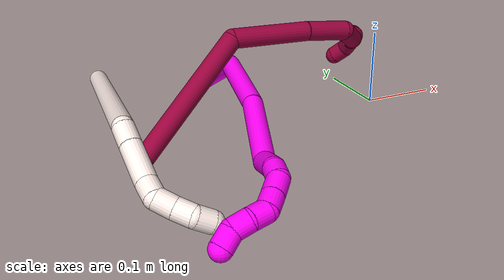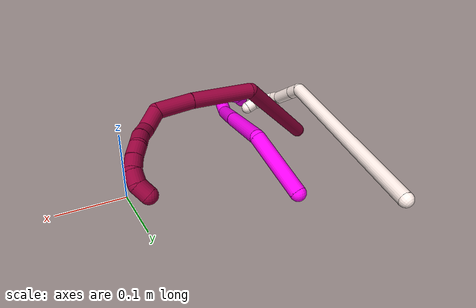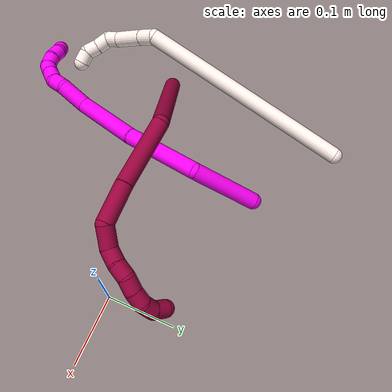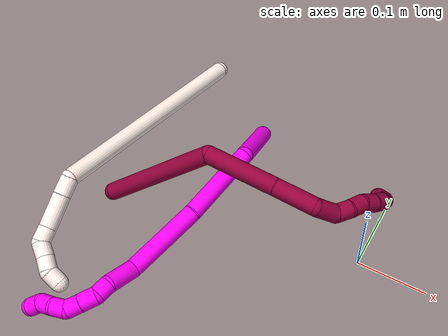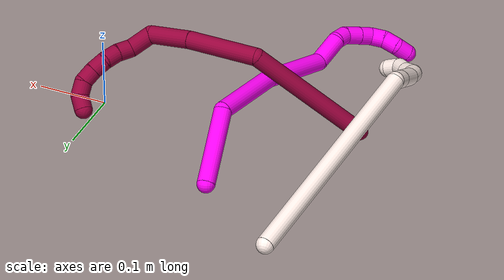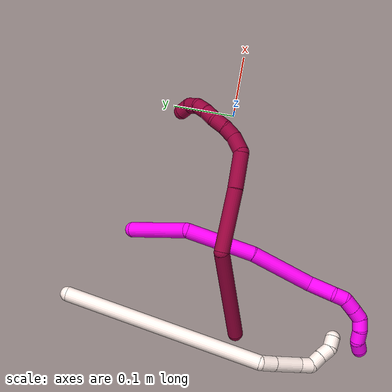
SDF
<sdf version="1.7">
 <world name="default">
  <model name="8">
   <static>0</static>
   <link name="8">
    <collision name="collision-cylinder-e_1_1_4">
     <pose>0.052071 -0.053715 -0.05172 2.33728 0.609595 1.27368</pose>
     <geometry><cylinder><radius>0.0125</radius><length>0.181898</length></cylinder></geometry>
     <surface>
      <friction><ode><mu>1.16</mu><mu2>1.16</mu2><slip1>0</slip1><slip2>0</slip2></ode></friction>
      <contact><ode><kp>1e+06</kp><kd>1</kd><max_vel>0</max_vel><min_depth>0.001</min_depth></ode></contact>
     </surface>
    </collision>
    <visual name="visual-cylinder-e_1_1_4">
     <pose>0.052071 -0.053715 -0.05172 2.33728 0.609595 1.27368</pose>
     <geometry><cylinder><radius>0.0125</radius><length>0.181898</length></cylinder></geometry>
     <material><ambient>0.584314 0 0.227451 1</ambient></material>
    </visual>
    <collision name="collision-cylinder-e_2_4_5">
     <pose>0.12227 -0.105569 -0.150842 -3.10235 0.364991 -2.92973</pose>
     <geometry><cylinder><radius>0.0125</radius><length>0.101566</length></cylinder></geometry>
     <surface>
      <friction><ode><mu>1.16</mu><mu2>1.16</mu2><slip1>0</slip1><slip2>0</slip2></ode></friction>
      <contact><ode><kp>1e+06</kp><kd>1</kd><max_vel>0</max_vel><min_depth>0.001</min_depth></ode></contact>
     </surface>
    </collision>
    <visual name="visual-cylinder-e_2_4_5">
     <pose>0.12227 -0.105569 -0.150842 -3.10235 0.364991 -2.92973</pose>
     <geometry><cylinder><radius>0.0125</radius><length>0.101566</length></cylinder></geometry>
     <material><ambient>0.584314 0 0.227451 1</ambient></material>
    </visual>
    <collision name="collision-cylinder-e_3_5_6">
     <pose>0.151737 -0.09991 -0.224604 -2.99852 0.402561 -2.4661</pose>
     <geometry><cylinder><radius>0.0125</radius><length>0.057893</length></cylinder></geometry>
     <surface>
      <friction><ode><mu>1.16</mu><mu2>1.16</mu2><slip1>0</slip1><slip2>0</slip2></ode></friction>
      <contact><ode><kp>1e+06</kp><kd>1</kd><max_vel>0</max_vel><min_depth>0.001</min_depth></ode></contact>
     </surface>
    </collision>
    <visual name="visual-cylinder-e_3_5_6">
     <pose>0.151737 -0.09991 -0.224604 -2.99852 0.402561 -2.4661</pose>
     <geometry><cylinder><radius>0.0125</radius><length>0.057893</length></cylinder></geometry>
     <material><ambient>0.584314 0 0.227451 1</ambient></material>
    </visual>
    <collision name="collision-cylinder-e_4_6_7">
     <pose>0.174026 -0.085721 -0.258512 -2.19901 0.705921 -1.25187</pose>
     <geometry><cylinder><radius>0.0125</radius><length>0.033755</length></cylinder></geometry>
     <surface>
      <friction><ode><mu>1.16</mu><mu2>1.16</mu2><slip1>0</slip1><slip2>0</slip2></ode></friction>
      <contact><ode><kp>1e+06</kp><kd>1</kd><max_vel>0</max_vel><min_depth>0.001</min_depth></ode></contact>
     </surface>
    </collision>
    <visual name="visual-cylinder-e_4_6_7">
     <pose>0.174026 -0.085721 -0.258512 -2.19901 0.705921 -1.25187</pose>
     <geometry><cylinder><radius>0.0125</radius><length>0.033755</length></cylinder></geometry>
     <material><ambient>0.584314 0 0.227451 1</ambient></material>
    </visual>
    <collision name="collision-cylinder-e_5_7_8">
     <pose>0.195509 -0.074037 -0.268803 -2.70125 1.29061 -2.56368</pose>
     <geometry><cylinder><radius>0.0125</radius><length>0.021923</length></cylinder></geometry>
     <surface>
      <friction><ode><mu>1.16</mu><mu2>1.16</mu2><slip1>0</slip1><slip2>0</slip2></ode></friction>
      <contact><ode><kp>1e+06</kp><kd>1</kd><max_vel>0</max_vel><min_depth>0.001</min_depth></ode></contact>
     </surface>
    </collision>
    <visual name="visual-cylinder-e_5_7_8">
     <pose>0.195509 -0.074037 -0.268803 -2.70125 1.29061 -2.56368</pose>
     <geometry><cylinder><radius>0.0125</radius><length>0.021923</length></cylinder></geometry>
     <material><ambient>0.584314 0 0.227451 1</ambient></material>
    </visual>
    <collision name="collision-cylinder-e_6_8_9">
     <pose>0.21622 -0.069975 -0.272367 -1.85944 1.29413 -1.58327</pose>
     <geometry><cylinder><radius>0.0125</radius><length>0.021158</length></cylinder></geometry>
     <surface>
      <friction><ode><mu>1.16</mu><mu2>1.16</mu2><slip1>0</slip1><slip2>0</slip2></ode></friction>
      <contact><ode><kp>1e+06</kp><kd>1</kd><max_vel>0</max_vel><min_depth>0.001</min_depth></ode></contact>
     </surface>
    </collision>
    <visual name="visual-cylinder-e_6_8_9">
     <pose>0.21622 -0.069975 -0.272367 -1.85944 1.29413 -1.58327</pose>
     <geometry><cylinder><radius>0.0125</radius><length>0.021158</length></cylinder></geometry>
     <material><ambient>0.584314 0 0.227451 1</ambient></material>
    </visual>
    <collision name="collision-cylinder-e_7_9_10">
     <pose>0.234755 -0.061481 -0.275326 -1.92799 0.939571 -1.26294</pose>
     <geometry><cylinder><radius>0.0125</radius><length>0.020705</length></cylinder></geometry>
     <surface>
      <friction><ode><mu>1.16</mu><mu2>1.16</mu2><slip1>0</slip1><slip2>0</slip2></ode></friction>
      <contact><ode><kp>1e+06</kp><kd>1</kd><max_vel>0</max_vel><min_depth>0.001</min_depth></ode></contact>
     </surface>
    </collision>
    <visual name="visual-cylinder-e_7_9_10">
     <pose>0.234755 -0.061481 -0.275326 -1.92799 0.939571 -1.26294</pose>
     <geometry><cylinder><radius>0.0125</radius><length>0.020705</length></cylinder></geometry>
     <material><ambient>0.584314 0 0.227451 1</ambient></material>
    </visual>
    <collision name="collision-cylinder-e_8_10_11">
     <pose>0.25137 -0.049777 -0.27781 -1.6289 0.943258 -0.99111</pose>
     <geometry><cylinder><radius>0.0125</radius><length>0.020403</length></cylinder></geometry>
     <surface>
      <friction><ode><mu>1.16</mu><mu2>1.16</mu2><slip1>0</slip1><slip2>0</slip2></ode></friction>
      <contact><ode><kp>1e+06</kp><kd>1</kd><max_vel>0</max_vel><min_depth>0.001</min_depth></ode></contact>
     </surface>
    </collision>
    <visual name="visual-cylinder-e_8_10_11">
     <pose>0.25137 -0.049777 -0.27781 -1.6289 0.943258 -0.99111</pose>
     <geometry><cylinder><radius>0.0125</radius><length>0.020403</length></cylinder></geometry>
     <material><ambient>0.584314 0 0.227451 1</ambient></material>
    </visual>
    <collision name="collision-cylinder-e_9_11_12">
     <pose>0.265243 -0.035882 -0.275353 -1.23022 0.589367 -0.422507</pose>
     <geometry><cylinder><radius>0.0125</radius><length>0.020205</length></cylinder></geometry>
     <surface>
      <friction><ode><mu>1.16</mu><mu2>1.16</mu2><slip1>0</slip1><slip2>0</slip2></ode></friction>
      <contact><ode><kp>1e+06</kp><kd>1</kd><max_vel>0</max_vel><min_depth>0.001</min_depth></ode></contact>
     </surface>
    </collision>
    <visual name="visual-cylinder-e_9_11_12">
     <pose>0.265243 -0.035882 -0.275353 -1.23022 0.589367 -0.422507</pose>
     <geometry><cylinder><radius>0.0125</radius><length>0.020205</length></cylinder></geometry>
     <material><ambient>0.584314 0 0.227451 1</ambient></material>
    </visual>
    <collision name="collision-cylinder-e_10_12_2">
     <pose>0.273449 -0.021209 -0.265293 -0.749933 0.25559 -0.101062</pose>
     <geometry><cylinder><radius>0.0125</radius><length>0.020494</length></cylinder></geometry>
     <surface>
      <friction><ode><mu>1.16</mu><mu2>1.16</mu2><slip1>0</slip1><slip2>0</slip2></ode></friction>
      <contact><ode><kp>1e+06</kp><kd>1</kd><max_vel>0</max_vel><min_depth>0.001</min_depth></ode></contact>
     </surface>
    </collision>
    <visual name="visual-cylinder-e_10_12_2">
     <pose>0.273449 -0.021209 -0.265293 -0.749933 0.25559 -0.101062</pose>
     <geometry><cylinder><radius>0.0125</radius><length>0.020494</length></cylinder></geometry>
     <material><ambient>0.584314 0 0.227451 1</ambient></material>
    </visual>
    <collision name="collision-sphere-2">
     <pose>0.27604 -0.014452 -0.258038 0 -0 0</pose>
     <geometry><sphere><radius>0.0125</radius></sphere></geometry>
     <surface>
      <friction><ode><mu>1.16</mu><mu2>1.16</mu2><slip1>0</slip1><slip2>0</slip2></ode></friction>
      <contact><ode><kp>1e+06</kp><kd>1</kd><max_vel>0</max_vel><min_depth>0.001</min_depth></ode></contact>
     </surface>
    </collision>
    <visual name="visual-sphere-2">
     <pose>0.27604 -0.014452 -0.258038 0 -0 0</pose>
     <geometry><sphere><radius>0.0125</radius></sphere></geometry>
     <material><ambient>0.584314 0 0.227451 1</ambient></material>
    </visual>
    <collision name="collision-sphere-12">
     <pose>0.270858 -0.027966 -0.272547 0 -0 0</pose>
     <geometry><sphere><radius>0.0125</radius></sphere></geometry>
     <surface>
      <friction><ode><mu>1.16</mu><mu2>1.16</mu2><slip1>0</slip1><slip2>0</slip2></ode></friction>
      <contact><ode><kp>1e+06</kp><kd>1</kd><max_vel>0</max_vel><min_depth>0.001</min_depth></ode></contact>
     </surface>
    </collision>
    <visual name="visual-sphere-12">
     <pose>0.270858 -0.027966 -0.272547 0 -0 0</pose>
     <geometry><sphere><radius>0.0125</radius></sphere></geometry>
     <material><ambient>0.584314 0 0.227451 1</ambient></material>
    </visual>
    <collision name="collision-sphere-11">
     <pose>0.259628 -0.043798 -0.278158 0 -0 0</pose>
     <geometry><sphere><radius>0.0125</radius></sphere></geometry>
     <surface>
      <friction><ode><mu>1.16</mu><mu2>1.16</mu2><slip1>0</slip1><slip2>0</slip2></ode></friction>
      <contact><ode><kp>1e+06</kp><kd>1</kd><max_vel>0</max_vel><min_depth>0.001</min_depth></ode></contact>
     </surface>
    </collision>
    <visual name="visual-sphere-11">
     <pose>0.259628 -0.043798 -0.278158 0 -0 0</pose>
     <geometry><sphere><radius>0.0125</radius></sphere></geometry>
     <material><ambient>0.584314 0 0.227451 1</ambient></material>
    </visual>
    <collision name="collision-sphere-10">
     <pose>0.243112 -0.055757 -0.277462 0 -0 0</pose>
     <geometry><sphere><radius>0.0125</radius></sphere></geometry>
     <surface>
      <friction><ode><mu>1.16</mu><mu2>1.16</mu2><slip1>0</slip1><slip2>0</slip2></ode></friction>
      <contact><ode><kp>1e+06</kp><kd>1</kd><max_vel>0</max_vel><min_depth>0.001</min_depth></ode></contact>
     </surface>
    </collision>
    <visual name="visual-sphere-10">
     <pose>0.243112 -0.055757 -0.277462 0 -0 0</pose>
     <geometry><sphere><radius>0.0125</radius></sphere></geometry>
     <material><ambient>0.584314 0 0.227451 1</ambient></material>
    </visual>
    <collision name="collision-sphere-9">
     <pose>0.226397 -0.067205 -0.27319 0 -0 0</pose>
     <geometry><sphere><radius>0.0125</radius></sphere></geometry>
     <surface>
      <friction><ode><mu>1.16</mu><mu2>1.16</mu2><slip1>0</slip1><slip2>0</slip2></ode></friction>
      <contact><ode><kp>1e+06</kp><kd>1</kd><max_vel>0</max_vel><min_depth>0.001</min_depth></ode></contact>
     </surface>
    </collision>
    <visual name="visual-sphere-9">
     <pose>0.226397 -0.067205 -0.27319 0 -0 0</pose>
     <geometry><sphere><radius>0.0125</radius></sphere></geometry>
     <material><ambient>0.584314 0 0.227451 1</ambient></material>
    </visual>
    <collision name="collision-sphere-4">
     <pose>0.104143 -0.10743 -0.10344 0 -0 0</pose>
     <geometry><sphere><radius>0.0125</radius></sphere></geometry>
     <surface>
      <friction><ode><mu>1.16</mu><mu2>1.16</mu2><slip1>0</slip1><slip2>0</slip2></ode></friction>
      <contact><ode><kp>1e+06</kp><kd>1</kd><max_vel>0</max_vel><min_depth>0.001</min_depth></ode></contact>
     </surface>
    </collision>
    <visual name="visual-sphere-4">
     <pose>0.104143 -0.10743 -0.10344 0 -0 0</pose>
     <geometry><sphere><radius>0.0125</radius></sphere></geometry>
     <material><ambient>0.584314 0 0.227451 1</ambient></material>
    </visual>
    <collision name="collision-sphere-1">
     <geometry><sphere><radius>0.0125</radius></sphere></geometry>
     <surface>
      <friction><ode><mu>1.16</mu><mu2>1.16</mu2><slip1>0</slip1><slip2>0</slip2></ode></friction>
      <contact><ode><kp>1e+06</kp><kd>1</kd><max_vel>0</max_vel><min_depth>0.001</min_depth></ode></contact>
     </surface>
    </collision>
    <visual name="visual-sphere-1">
     <geometry><sphere><radius>0.0125</radius></sphere></geometry>
     <material><ambient>0.584314 0 0.227451 1</ambient></material>
    </visual>
    <collision name="collision-sphere-8">
     <pose>0.206043 -0.072745 -0.271545 0 -0 0</pose>
     <geometry><sphere><radius>0.0125</radius></sphere></geometry>
     <surface>
      <friction><ode><mu>1.16</mu><mu2>1.16</mu2><slip1>0</slip1><slip2>0</slip2></ode></friction>
      <contact><ode><kp>1e+06</kp><kd>1</kd><max_vel>0</max_vel><min_depth>0.001</min_depth></ode></contact>
     </surface>
    </collision>
    <visual name="visual-sphere-8">
     <pose>0.206043 -0.072745 -0.271545 0 -0 0</pose>
     <geometry><sphere><radius>0.0125</radius></sphere></geometry>
     <material><ambient>0.584314 0 0.227451 1</ambient></material>
    </visual>
    <collision name="collision-sphere-5">
     <pose>0.140396 -0.103708 -0.198243 0 -0 0</pose>
     <geometry><sphere><radius>0.0125</radius></sphere></geometry>
     <surface>
      <friction><ode><mu>1.16</mu><mu2>1.16</mu2><slip1>0</slip1><slip2>0</slip2></ode></friction>
      <contact><ode><kp>1e+06</kp><kd>1</kd><max_vel>0</max_vel><min_depth>0.001</min_depth></ode></contact>
     </surface>
    </collision>
    <visual name="visual-sphere-5">
     <pose>0.140396 -0.103708 -0.198243 0 -0 0</pose>
     <geometry><sphere><radius>0.0125</radius></sphere></geometry>
     <material><ambient>0.584314 0 0.227451 1</ambient></material>
    </visual>
    <collision name="collision-sphere-6">
     <pose>0.163077 -0.096113 -0.250964 0 -0 0</pose>
     <geometry><sphere><radius>0.0125</radius></sphere></geometry>
     <surface>
      <friction><ode><mu>1.16</mu><mu2>1.16</mu2><slip1>0</slip1><slip2>0</slip2></ode></friction>
      <contact><ode><kp>1e+06</kp><kd>1</kd><max_vel>0</max_vel><min_depth>0.001</min_depth></ode></contact>
     </surface>
    </collision>
    <visual name="visual-sphere-6">
     <pose>0.163077 -0.096113 -0.250964 0 -0 0</pose>
     <geometry><sphere><radius>0.0125</radius></sphere></geometry>
     <material><ambient>0.584314 0 0.227451 1</ambient></material>
    </visual>
    <collision name="collision-sphere-7">
     <pose>0.184975 -0.075329 -0.266061 0 -0 0</pose>
     <geometry><sphere><radius>0.0125</radius></sphere></geometry>
     <surface>
      <friction><ode><mu>1.16</mu><mu2>1.16</mu2><slip1>0</slip1><slip2>0</slip2></ode></friction>
      <contact><ode><kp>1e+06</kp><kd>1</kd><max_vel>0</max_vel><min_depth>0.001</min_depth></ode></contact>
     </surface>
    </collision>
    <visual name="visual-sphere-7">
     <pose>0.184975 -0.075329 -0.266061 0 -0 0</pose>
     <geometry><sphere><radius>0.0125</radius></sphere></geometry>
     <material><ambient>0.584314 0 0.227451 1</ambient></material>
    </visual>
    <inertial>
     <pose>0.132725 -0.071445 -0.160964 0 -0 0</pose>
     <mass>0.5</mass>
     <inertia>
      <ixx>0.000415</ixx>
      <ixy>0</ixy>
      <ixz>0</ixz>
      <iyy>0.000573</iyy>
      <iyz>0</iyz>
      <izz>-7.4e-05</izz>
     </inertia>
    </inertial>
   </link>
   <pose>-0.355804 -0.065977 0.011492 -1.56517 -0.072737 1.16616</pose>
  </model>
  <model name="10">
   <static>0</static>
   <link name="10">
    <collision name="collision-cylinder-e_1_1_4">
     <pose>0.032961 -0.042865 0.001409 1.53794 0.655255 0.635488</pose>
     <geometry><cylinder><radius>0.0125</radius><length>0.108181</length></cylinder></geometry>
     <surface>
      <friction><ode><mu>1.16</mu><mu2>1.16</mu2><slip1>0</slip1><slip2>0</slip2></ode></friction>
      <contact><ode><kp>1e+06</kp><kd>1</kd><max_vel>0</max_vel><min_depth>0.001</min_depth></ode></contact>
     </surface>
    </collision>
    <visual name="visual-cylinder-e_1_1_4">
     <pose>0.032961 -0.042865 0.001409 1.53794 0.655255 0.635488</pose>
     <geometry><cylinder><radius>0.0125</radius><length>0.108181</length></cylinder></geometry>
     <material><ambient>1 0 0.964706 1</ambient></material>
    </visual>
    <collision name="collision-cylinder-e_2_4_5">
     <pose>0.064775 -0.139032 0.023569 1.19955 -0.020043 -0.013706</pose>
     <geometry><cylinder><radius>0.0125</radius><length>0.114421</length></cylinder></geometry>
     <surface>
      <friction><ode><mu>1.16</mu><mu2>1.16</mu2><slip1>0</slip1><slip2>0</slip2></ode></friction>
      <contact><ode><kp>1e+06</kp><kd>1</kd><max_vel>0</max_vel><min_depth>0.001</min_depth></ode></contact>
     </surface>
    </collision>
    <visual name="visual-cylinder-e_2_4_5">
     <pose>0.064775 -0.139032 0.023569 1.19955 -0.020043 -0.013706</pose>
     <geometry><cylinder><radius>0.0125</radius><length>0.114421</length></cylinder></geometry>
     <material><ambient>1 0 0.964706 1</ambient></material>
    </visual>
    <collision name="collision-cylinder-e_3_5_6">
     <pose>0.055499 -0.239322 0.070753 1.05836 -0.149661 -0.087631</pose>
     <geometry><cylinder><radius>0.0125</radius><length>0.109044</length></cylinder></geometry>
     <surface>
      <friction><ode><mu>1.16</mu><mu2>1.16</mu2><slip1>0</slip1><slip2>0</slip2></ode></friction>
      <contact><ode><kp>1e+06</kp><kd>1</kd><max_vel>0</max_vel><min_depth>0.001</min_depth></ode></contact>
     </surface>
    </collision>
    <visual name="visual-cylinder-e_3_5_6">
     <pose>0.055499 -0.239322 0.070753 1.05836 -0.149661 -0.087631</pose>
     <geometry><cylinder><radius>0.0125</radius><length>0.109044</length></cylinder></geometry>
     <material><ambient>1 0 0.964706 1</ambient></material>
    </visual>
    <collision name="collision-cylinder-e_4_6_7">
     <pose>0.056136 -0.304746 0.106039 1.12314 0.40496 0.256893</pose>
     <geometry><cylinder><radius>0.0125</radius><length>0.044501</length></cylinder></geometry>
     <surface>
      <friction><ode><mu>1.16</mu><mu2>1.16</mu2><slip1>0</slip1><slip2>0</slip2></ode></friction>
      <contact><ode><kp>1e+06</kp><kd>1</kd><max_vel>0</max_vel><min_depth>0.001</min_depth></ode></contact>
     </surface>
    </collision>
    <visual name="visual-cylinder-e_4_6_7">
     <pose>0.056136 -0.304746 0.106039 1.12314 0.40496 0.256893</pose>
     <geometry><cylinder><radius>0.0125</radius><length>0.044501</length></cylinder></geometry>
     <material><ambient>1 0 0.964706 1</ambient></material>
    </visual>
    <collision name="collision-cylinder-e_5_7_8">
     <pose>0.06478 -0.332279 0.119147 1.13328 -0.012182 -0.007751</pose>
     <geometry><cylinder><radius>0.0125</radius><length>0.020088</length></cylinder></geometry>
     <surface>
      <friction><ode><mu>1.16</mu><mu2>1.16</mu2><slip1>0</slip1><slip2>0</slip2></ode></friction>
      <contact><ode><kp>1e+06</kp><kd>1</kd><max_vel>0</max_vel><min_depth>0.001</min_depth></ode></contact>
     </surface>
    </collision>
    <visual name="visual-cylinder-e_5_7_8">
     <pose>0.06478 -0.332279 0.119147 1.13328 -0.012182 -0.007751</pose>
     <geometry><cylinder><radius>0.0125</radius><length>0.020088</length></cylinder></geometry>
     <material><ambient>1 0 0.964706 1</ambient></material>
    </visual>
    <collision name="collision-cylinder-e_6_8_9">
     <pose>0.061944 -0.34847 0.132371 0.66918 -0.232939 -0.081307</pose>
     <geometry><cylinder><radius>0.0125</radius><length>0.023506</length></cylinder></geometry>
     <surface>
      <friction><ode><mu>1.16</mu><mu2>1.16</mu2><slip1>0</slip1><slip2>0</slip2></ode></friction>
      <contact><ode><kp>1e+06</kp><kd>1</kd><max_vel>0</max_vel><min_depth>0.001</min_depth></ode></contact>
     </surface>
    </collision>
    <visual name="visual-cylinder-e_6_8_9">
     <pose>0.061944 -0.34847 0.132371 0.66918 -0.232939 -0.081307</pose>
     <geometry><cylinder><radius>0.0125</radius><length>0.023506</length></cylinder></geometry>
     <material><ambient>1 0 0.964706 1</ambient></material>
    </visual>
    <collision name="collision-cylinder-e_7_9_10">
     <pose>0.056789 -0.361405 0.149193 0.639555 -0.244588 -0.081355</pose>
     <geometry><cylinder><radius>0.0125</radius><length>0.020174</length></cylinder></geometry>
     <surface>
      <friction><ode><mu>1.16</mu><mu2>1.16</mu2><slip1>0</slip1><slip2>0</slip2></ode></friction>
      <contact><ode><kp>1e+06</kp><kd>1</kd><max_vel>0</max_vel><min_depth>0.001</min_depth></ode></contact>
     </surface>
    </collision>
    <visual name="visual-cylinder-e_7_9_10">
     <pose>0.056789 -0.361405 0.149193 0.639555 -0.244588 -0.081355</pose>
     <geometry><cylinder><radius>0.0125</radius><length>0.020174</length></cylinder></geometry>
     <material><ambient>1 0 0.964706 1</ambient></material>
    </visual>
    <collision name="collision-cylinder-e_8_10_11">
     <pose>0.053191 -0.36733 0.166992 0.008414 -0.115637 -0.000487</pose>
     <geometry><cylinder><radius>0.0125</radius><length>0.020028</length></cylinder></geometry>
     <surface>
      <friction><ode><mu>1.16</mu><mu2>1.16</mu2><slip1>0</slip1><slip2>0</slip2></ode></friction>
      <contact><ode><kp>1e+06</kp><kd>1</kd><max_vel>0</max_vel><min_depth>0.001</min_depth></ode></contact>
     </surface>
    </collision>
    <visual name="visual-cylinder-e_8_10_11">
     <pose>0.053191 -0.36733 0.166992 0.008414 -0.115637 -0.000487</pose>
     <geometry><cylinder><radius>0.0125</radius><length>0.020028</length></cylinder></geometry>
     <material><ambient>1 0 0.964706 1</ambient></material>
    </visual>
    <collision name="collision-cylinder-e_9_11_12">
     <pose>0.048437 -0.365827 0.186153 -0.170537 -0.367393 0.031759</pose>
     <geometry><cylinder><radius>0.0125</radius><length>0.020038</length></cylinder></geometry>
     <surface>
      <friction><ode><mu>1.16</mu><mu2>1.16</mu2><slip1>0</slip1><slip2>0</slip2></ode></friction>
      <contact><ode><kp>1e+06</kp><kd>1</kd><max_vel>0</max_vel><min_depth>0.001</min_depth></ode></contact>
     </surface>
    </collision>
    <visual name="visual-cylinder-e_9_11_12">
     <pose>0.048437 -0.365827 0.186153 -0.170537 -0.367393 0.031759</pose>
     <geometry><cylinder><radius>0.0125</radius><length>0.020038</length></cylinder></geometry>
     <material><ambient>1 0 0.964706 1</ambient></material>
    </visual>
    <collision name="collision-cylinder-e_10_12_2">
     <pose>0.038906 -0.366789 0.203017 0.321727 -0.634341 -0.106428</pose>
     <geometry><cylinder><radius>0.0125</radius><length>0.020018</length></cylinder></geometry>
     <surface>
      <friction><ode><mu>1.16</mu><mu2>1.16</mu2><slip1>0</slip1><slip2>0</slip2></ode></friction>
      <contact><ode><kp>1e+06</kp><kd>1</kd><max_vel>0</max_vel><min_depth>0.001</min_depth></ode></contact>
     </surface>
    </collision>
    <visual name="visual-cylinder-e_10_12_2">
     <pose>0.038906 -0.366789 0.203017 0.321727 -0.634341 -0.106428</pose>
     <geometry><cylinder><radius>0.0125</radius><length>0.020018</length></cylinder></geometry>
     <material><ambient>1 0 0.964706 1</ambient></material>
    </visual>
    <collision name="collision-sphere-2">
     <pose>0.032974 -0.369338 0.210665 0 -0 0</pose>
     <geometry><sphere><radius>0.0125</radius></sphere></geometry>
     <surface>
      <friction><ode><mu>1.16</mu><mu2>1.16</mu2><slip1>0</slip1><slip2>0</slip2></ode></friction>
      <contact><ode><kp>1e+06</kp><kd>1</kd><max_vel>0</max_vel><min_depth>0.001</min_depth></ode></contact>
     </surface>
    </collision>
    <visual name="visual-sphere-2">
     <pose>0.032974 -0.369338 0.210665 0 -0 0</pose>
     <geometry><sphere><radius>0.0125</radius></sphere></geometry>
     <material><ambient>1 0 0.964706 1</ambient></material>
    </visual>
    <collision name="collision-sphere-12">
     <pose>0.044838 -0.36424 0.195368 0 -0 0</pose>
     <geometry><sphere><radius>0.0125</radius></sphere></geometry>
     <surface>
      <friction><ode><mu>1.16</mu><mu2>1.16</mu2><slip1>0</slip1><slip2>0</slip2></ode></friction>
      <contact><ode><kp>1e+06</kp><kd>1</kd><max_vel>0</max_vel><min_depth>0.001</min_depth></ode></contact>
     </surface>
    </collision>
    <visual name="visual-sphere-12">
     <pose>0.044838 -0.36424 0.195368 0 -0 0</pose>
     <geometry><sphere><radius>0.0125</radius></sphere></geometry>
     <material><ambient>1 0 0.964706 1</ambient></material>
    </visual>
    <collision name="collision-sphere-11">
     <pose>0.052035 -0.367414 0.176939 0 -0 0</pose>
     <geometry><sphere><radius>0.0125</radius></sphere></geometry>
     <surface>
      <friction><ode><mu>1.16</mu><mu2>1.16</mu2><slip1>0</slip1><slip2>0</slip2></ode></friction>
      <contact><ode><kp>1e+06</kp><kd>1</kd><max_vel>0</max_vel><min_depth>0.001</min_depth></ode></contact>
     </surface>
    </collision>
    <visual name="visual-sphere-11">
     <pose>0.052035 -0.367414 0.176939 0 -0 0</pose>
     <geometry><sphere><radius>0.0125</radius></sphere></geometry>
     <material><ambient>1 0 0.964706 1</ambient></material>
    </visual>
    <collision name="collision-sphere-10">
     <pose>0.054346 -0.367246 0.157045 0 -0 0</pose>
     <geometry><sphere><radius>0.0125</radius></sphere></geometry>
     <surface>
      <friction><ode><mu>1.16</mu><mu2>1.16</mu2><slip1>0</slip1><slip2>0</slip2></ode></friction>
      <contact><ode><kp>1e+06</kp><kd>1</kd><max_vel>0</max_vel><min_depth>0.001</min_depth></ode></contact>
     </surface>
    </collision>
    <visual name="visual-sphere-10">
     <pose>0.054346 -0.367246 0.157045 0 -0 0</pose>
     <geometry><sphere><radius>0.0125</radius></sphere></geometry>
     <material><ambient>1 0 0.964706 1</ambient></material>
    </visual>
    <collision name="collision-sphere-9">
     <pose>0.059231 -0.355564 0.14134 0 -0 0</pose>
     <geometry><sphere><radius>0.0125</radius></sphere></geometry>
     <surface>
      <friction><ode><mu>1.16</mu><mu2>1.16</mu2><slip1>0</slip1><slip2>0</slip2></ode></friction>
      <contact><ode><kp>1e+06</kp><kd>1</kd><max_vel>0</max_vel><min_depth>0.001</min_depth></ode></contact>
     </surface>
    </collision>
    <visual name="visual-sphere-9">
     <pose>0.059231 -0.355564 0.14134 0 -0 0</pose>
     <geometry><sphere><radius>0.0125</radius></sphere></geometry>
     <material><ambient>1 0 0.964706 1</ambient></material>
    </visual>
    <collision name="collision-sphere-4">
     <pose>0.065922 -0.08573 0.002818 0 -0 0</pose>
     <geometry><sphere><radius>0.0125</radius></sphere></geometry>
     <surface>
      <friction><ode><mu>1.16</mu><mu2>1.16</mu2><slip1>0</slip1><slip2>0</slip2></ode></friction>
      <contact><ode><kp>1e+06</kp><kd>1</kd><max_vel>0</max_vel><min_depth>0.001</min_depth></ode></contact>
     </surface>
    </collision>
    <visual name="visual-sphere-4">
     <pose>0.065922 -0.08573 0.002818 0 -0 0</pose>
     <geometry><sphere><radius>0.0125</radius></sphere></geometry>
     <material><ambient>1 0 0.964706 1</ambient></material>
    </visual>
    <collision name="collision-sphere-1">
     <geometry><sphere><radius>0.0125</radius></sphere></geometry>
     <surface>
      <friction><ode><mu>1.16</mu><mu2>1.16</mu2><slip1>0</slip1><slip2>0</slip2></ode></friction>
      <contact><ode><kp>1e+06</kp><kd>1</kd><max_vel>0</max_vel><min_depth>0.001</min_depth></ode></contact>
     </surface>
    </collision>
    <visual name="visual-sphere-1">
     <geometry><sphere><radius>0.0125</radius></sphere></geometry>
     <material><ambient>1 0 0.964706 1</ambient></material>
    </visual>
    <collision name="collision-sphere-8">
     <pose>0.064657 -0.341376 0.123402 0 -0 0</pose>
     <geometry><sphere><radius>0.0125</radius></sphere></geometry>
     <surface>
      <friction><ode><mu>1.16</mu><mu2>1.16</mu2><slip1>0</slip1><slip2>0</slip2></ode></friction>
      <contact><ode><kp>1e+06</kp><kd>1</kd><max_vel>0</max_vel><min_depth>0.001</min_depth></ode></contact>
     </surface>
    </collision>
    <visual name="visual-sphere-8">
     <pose>0.064657 -0.341376 0.123402 0 -0 0</pose>
     <geometry><sphere><radius>0.0125</radius></sphere></geometry>
     <material><ambient>1 0 0.964706 1</ambient></material>
    </visual>
    <collision name="collision-sphere-5">
     <pose>0.063628 -0.192335 0.04432 0 -0 0</pose>
     <geometry><sphere><radius>0.0125</radius></sphere></geometry>
     <surface>
      <friction><ode><mu>1.16</mu><mu2>1.16</mu2><slip1>0</slip1><slip2>0</slip2></ode></friction>
      <contact><ode><kp>1e+06</kp><kd>1</kd><max_vel>0</max_vel><min_depth>0.001</min_depth></ode></contact>
     </surface>
    </collision>
    <visual name="visual-sphere-5">
     <pose>0.063628 -0.192335 0.04432 0 -0 0</pose>
     <geometry><sphere><radius>0.0125</radius></sphere></geometry>
     <material><ambient>1 0 0.964706 1</ambient></material>
    </visual>
    <collision name="collision-sphere-6">
     <pose>0.04737 -0.28631 0.097187 0 -0 0</pose>
     <geometry><sphere><radius>0.0125</radius></sphere></geometry>
     <surface>
      <friction><ode><mu>1.16</mu><mu2>1.16</mu2><slip1>0</slip1><slip2>0</slip2></ode></friction>
      <contact><ode><kp>1e+06</kp><kd>1</kd><max_vel>0</max_vel><min_depth>0.001</min_depth></ode></contact>
     </surface>
    </collision>
    <visual name="visual-sphere-6">
     <pose>0.04737 -0.28631 0.097187 0 -0 0</pose>
     <geometry><sphere><radius>0.0125</radius></sphere></geometry>
     <material><ambient>1 0 0.964706 1</ambient></material>
    </visual>
    <collision name="collision-sphere-7">
     <pose>0.064902 -0.323181 0.114891 0 -0 0</pose>
     <geometry><sphere><radius>0.0125</radius></sphere></geometry>
     <surface>
      <friction><ode><mu>1.16</mu><mu2>1.16</mu2><slip1>0</slip1><slip2>0</slip2></ode></friction>
      <contact><ode><kp>1e+06</kp><kd>1</kd><max_vel>0</max_vel><min_depth>0.001</min_depth></ode></contact>
     </surface>
    </collision>
    <visual name="visual-sphere-7">
     <pose>0.064902 -0.323181 0.114891 0 -0 0</pose>
     <geometry><sphere><radius>0.0125</radius></sphere></geometry>
     <material><ambient>1 0 0.964706 1</ambient></material>
    </visual>
    <inertial>
     <pose>0.05249 -0.208781 0.069873 0 -0 0</pose>
     <mass>0.5</mass>
     <inertia>
      <ixx>0.000371</ixx>
      <ixy>0</ixy>
      <ixz>0</ixz>
      <iyy>0.000171</iyy>
      <iyz>0</iyz>
      <izz>0.000283</izz>
     </inertia>
    </inertial>
   </link>
   <pose>-0.215467 0.132113 0.012483 1.588 -1.47997 -1.38306</pose>
  </model>
  <model name="11">
   <static>0</static>
   <link name="11">
    <collision name="collision-cylinder-e_1_1_4">
     <pose>-0.032735 -0.050927 0.159423 0.309202 -0.193156 -0.030194</pose>
     <geometry><cylinder><radius>0.0125</radius><length>0.341062</length></cylinder></geometry>
     <surface>
      <friction><ode><mu>1.16</mu><mu2>1.16</mu2><slip1>0</slip1><slip2>0</slip2></ode></friction>
      <contact><ode><kp>1e+06</kp><kd>1</kd><max_vel>0</max_vel><min_depth>0.001</min_depth></ode></contact>
     </surface>
    </collision>
    <visual name="visual-cylinder-e_1_1_4">
     <pose>-0.032735 -0.050927 0.159423 0.309202 -0.193156 -0.030194</pose>
     <geometry><cylinder><radius>0.0125</radius><length>0.341062</length></cylinder></geometry>
     <material><ambient>1 0.933333 0.909804 1</ambient></material>
    </visual>
    <collision name="collision-cylinder-e_2_4_5">
     <pose>-0.063856 -0.112145 0.326625 0.923458 0.124406 0.061965</pose>
     <geometry><cylinder><radius>0.0125</radius><length>0.026</length></cylinder></geometry>
     <surface>
      <friction><ode><mu>1.16</mu><mu2>1.16</mu2><slip1>0</slip1><slip2>0</slip2></ode></friction>
      <contact><ode><kp>1e+06</kp><kd>1</kd><max_vel>0</max_vel><min_depth>0.001</min_depth></ode></contact>
     </surface>
    </collision>
    <visual name="visual-cylinder-e_2_4_5">
     <pose>-0.063856 -0.112145 0.326625 0.923458 0.124406 0.061965</pose>
     <geometry><cylinder><radius>0.0125</radius><length>0.026</length></cylinder></geometry>
     <material><ambient>1 0.933333 0.909804 1</ambient></material>
    </visual>
    <collision name="collision-cylinder-e_3_5_6">
     <pose>-0.058772 -0.141772 0.348496 0.941054 0.144054 0.073364</pose>
     <geometry><cylinder><radius>0.0125</radius><length>0.048355</length></cylinder></geometry>
     <surface>
      <friction><ode><mu>1.16</mu><mu2>1.16</mu2><slip1>0</slip1><slip2>0</slip2></ode></friction>
      <contact><ode><kp>1e+06</kp><kd>1</kd><max_vel>0</max_vel><min_depth>0.001</min_depth></ode></contact>
     </surface>
    </collision>
    <visual name="visual-cylinder-e_3_5_6">
     <pose>-0.058772 -0.141772 0.348496 0.941054 0.144054 0.073364</pose>
     <geometry><cylinder><radius>0.0125</radius><length>0.048355</length></cylinder></geometry>
     <material><ambient>1 0.933333 0.909804 1</ambient></material>
    </visual>
    <collision name="collision-cylinder-e_4_6_7">
     <pose>-0.053792 -0.168647 0.370107 0.786617 0.140853 0.058524</pose>
     <geometry><cylinder><radius>0.0125</radius><length>0.021508</length></cylinder></geometry>
     <surface>
      <friction><ode><mu>1.16</mu><mu2>1.16</mu2><slip1>0</slip1><slip2>0</slip2></ode></friction>
      <contact><ode><kp>1e+06</kp><kd>1</kd><max_vel>0</max_vel><min_depth>0.001</min_depth></ode></contact>
     </surface>
    </collision>
    <visual name="visual-cylinder-e_4_6_7">
     <pose>-0.053792 -0.168647 0.370107 0.786617 0.140853 0.058524</pose>
     <geometry><cylinder><radius>0.0125</radius><length>0.021508</length></cylinder></geometry>
     <material><ambient>1 0.933333 0.909804 1</ambient></material>
    </visual>
    <collision name="collision-cylinder-e_5_7_8">
     <pose>-0.043761 -0.181272 0.38242 0.815111 0.883828 0.402976</pose>
     <geometry><cylinder><radius>0.0125</radius><length>0.022042</length></cylinder></geometry>
     <surface>
      <friction><ode><mu>1.16</mu><mu2>1.16</mu2><slip1>0</slip1><slip2>0</slip2></ode></friction>
      <contact><ode><kp>1e+06</kp><kd>1</kd><max_vel>0</max_vel><min_depth>0.001</min_depth></ode></contact>
     </surface>
    </collision>
    <visual name="visual-cylinder-e_5_7_8">
     <pose>-0.043761 -0.181272 0.38242 0.815111 0.883828 0.402976</pose>
     <geometry><cylinder><radius>0.0125</radius><length>0.022042</length></cylinder></geometry>
     <material><ambient>1 0.933333 0.909804 1</ambient></material>
    </visual>
    <collision name="collision-cylinder-e_6_8_9">
     <pose>-0.027591 -0.190417 0.393043 0.608106 0.822322 0.271938</pose>
     <geometry><cylinder><radius>0.0125</radius><length>0.020877</length></cylinder></geometry>
     <surface>
      <friction><ode><mu>1.16</mu><mu2>1.16</mu2><slip1>0</slip1><slip2>0</slip2></ode></friction>
      <contact><ode><kp>1e+06</kp><kd>1</kd><max_vel>0</max_vel><min_depth>0.001</min_depth></ode></contact>
     </surface>
    </collision>
    <visual name="visual-cylinder-e_6_8_9">
     <pose>-0.027591 -0.190417 0.393043 0.608106 0.822322 0.271938</pose>
     <geometry><cylinder><radius>0.0125</radius><length>0.020877</length></cylinder></geometry>
     <material><ambient>1 0.933333 0.909804 1</ambient></material>
    </visual>
    <collision name="collision-cylinder-e_7_9_2">
     <pose>-0.010301 -0.197398 0.39913 1.48346 1.27544 1.19292</pose>
     <geometry><cylinder><radius>0.0125</radius><length>0.020156</length></cylinder></geometry>
     <surface>
      <friction><ode><mu>1.16</mu><mu2>1.16</mu2><slip1>0</slip1><slip2>0</slip2></ode></friction>
      <contact><ode><kp>1e+06</kp><kd>1</kd><max_vel>0</max_vel><min_depth>0.001</min_depth></ode></contact>
     </surface>
    </collision>
    <visual name="visual-cylinder-e_7_9_2">
     <pose>-0.010301 -0.197398 0.39913 1.48346 1.27544 1.19292</pose>
     <geometry><cylinder><radius>0.0125</radius><length>0.020156</length></cylinder></geometry>
     <material><ambient>1 0.933333 0.909804 1</ambient></material>
    </visual>
    <collision name="collision-sphere-2">
     <pose>-0.000659 -0.200321 0.399386 0 -0 0</pose>
     <geometry><sphere><radius>0.0125</radius></sphere></geometry>
     <surface>
      <friction><ode><mu>1.16</mu><mu2>1.16</mu2><slip1>0</slip1><slip2>0</slip2></ode></friction>
      <contact><ode><kp>1e+06</kp><kd>1</kd><max_vel>0</max_vel><min_depth>0.001</min_depth></ode></contact>
     </surface>
    </collision>
    <visual name="visual-sphere-2">
     <pose>-0.000659 -0.200321 0.399386 0 -0 0</pose>
     <geometry><sphere><radius>0.0125</radius></sphere></geometry>
     <material><ambient>1 0.933333 0.909804 1</ambient></material>
    </visual>
    <collision name="collision-sphere-9">
     <pose>-0.019942 -0.194476 0.398874 0 -0 0</pose>
     <geometry><sphere><radius>0.0125</radius></sphere></geometry>
     <surface>
      <friction><ode><mu>1.16</mu><mu2>1.16</mu2><slip1>0</slip1><slip2>0</slip2></ode></friction>
      <contact><ode><kp>1e+06</kp><kd>1</kd><max_vel>0</max_vel><min_depth>0.001</min_depth></ode></contact>
     </surface>
    </collision>
    <visual name="visual-sphere-9">
     <pose>-0.019942 -0.194476 0.398874 0 -0 0</pose>
     <geometry><sphere><radius>0.0125</radius></sphere></geometry>
     <material><ambient>1 0.933333 0.909804 1</ambient></material>
    </visual>
    <collision name="collision-sphere-4">
     <pose>-0.065469 -0.101855 0.318846 0 -0 0</pose>
     <geometry><sphere><radius>0.0125</radius></sphere></geometry>
     <surface>
      <friction><ode><mu>1.16</mu><mu2>1.16</mu2><slip1>0</slip1><slip2>0</slip2></ode></friction>
      <contact><ode><kp>1e+06</kp><kd>1</kd><max_vel>0</max_vel><min_depth>0.001</min_depth></ode></contact>
     </surface>
    </collision>
    <visual name="visual-sphere-4">
     <pose>-0.065469 -0.101855 0.318846 0 -0 0</pose>
     <geometry><sphere><radius>0.0125</radius></sphere></geometry>
     <material><ambient>1 0.933333 0.909804 1</ambient></material>
    </visual>
    <collision name="collision-sphere-1">
     <geometry><sphere><radius>0.0125</radius></sphere></geometry>
     <surface>
      <friction><ode><mu>1.16</mu><mu2>1.16</mu2><slip1>0</slip1><slip2>0</slip2></ode></friction>
      <contact><ode><kp>1e+06</kp><kd>1</kd><max_vel>0</max_vel><min_depth>0.001</min_depth></ode></contact>
     </surface>
    </collision>
    <visual name="visual-sphere-1">
     <geometry><sphere><radius>0.0125</radius></sphere></geometry>
     <material><ambient>1 0.933333 0.909804 1</ambient></material>
    </visual>
    <collision name="collision-sphere-8">
     <pose>-0.03524 -0.186359 0.387213 0 -0 0</pose>
     <geometry><sphere><radius>0.0125</radius></sphere></geometry>
     <surface>
      <friction><ode><mu>1.16</mu><mu2>1.16</mu2><slip1>0</slip1><slip2>0</slip2></ode></friction>
      <contact><ode><kp>1e+06</kp><kd>1</kd><max_vel>0</max_vel><min_depth>0.001</min_depth></ode></contact>
     </surface>
    </collision>
    <visual name="visual-sphere-8">
     <pose>-0.03524 -0.186359 0.387213 0 -0 0</pose>
     <geometry><sphere><radius>0.0125</radius></sphere></geometry>
     <material><ambient>1 0.933333 0.909804 1</ambient></material>
    </visual>
    <collision name="collision-sphere-5">
     <pose>-0.062243 -0.122435 0.334404 0 -0 0</pose>
     <geometry><sphere><radius>0.0125</radius></sphere></geometry>
     <surface>
      <friction><ode><mu>1.16</mu><mu2>1.16</mu2><slip1>0</slip1><slip2>0</slip2></ode></friction>
      <contact><ode><kp>1e+06</kp><kd>1</kd><max_vel>0</max_vel><min_depth>0.001</min_depth></ode></contact>
     </surface>
    </collision>
    <visual name="visual-sphere-5">
     <pose>-0.062243 -0.122435 0.334404 0 -0 0</pose>
     <geometry><sphere><radius>0.0125</radius></sphere></geometry>
     <material><ambient>1 0.933333 0.909804 1</ambient></material>
    </visual>
    <collision name="collision-sphere-6">
     <pose>-0.055301 -0.161109 0.362587 0 -0 0</pose>
     <geometry><sphere><radius>0.0125</radius></sphere></geometry>
     <surface>
      <friction><ode><mu>1.16</mu><mu2>1.16</mu2><slip1>0</slip1><slip2>0</slip2></ode></friction>
      <contact><ode><kp>1e+06</kp><kd>1</kd><max_vel>0</max_vel><min_depth>0.001</min_depth></ode></contact>
     </surface>
    </collision>
    <visual name="visual-sphere-6">
     <pose>-0.055301 -0.161109 0.362587 0 -0 0</pose>
     <geometry><sphere><radius>0.0125</radius></sphere></geometry>
     <material><ambient>1 0.933333 0.909804 1</ambient></material>
    </visual>
    <collision name="collision-sphere-7">
     <pose>-0.052282 -0.176185 0.377627 0 -0 0</pose>
     <geometry><sphere><radius>0.0125</radius></sphere></geometry>
     <surface>
      <friction><ode><mu>1.16</mu><mu2>1.16</mu2><slip1>0</slip1><slip2>0</slip2></ode></friction>
      <contact><ode><kp>1e+06</kp><kd>1</kd><max_vel>0</max_vel><min_depth>0.001</min_depth></ode></contact>
     </surface>
    </collision>
    <visual name="visual-sphere-7">
     <pose>-0.052282 -0.176185 0.377627 0 -0 0</pose>
     <geometry><sphere><radius>0.0125</radius></sphere></geometry>
     <material><ambient>1 0.933333 0.909804 1</ambient></material>
    </visual>
    <inertial>
     <pose>-0.037144 -0.085435 0.224714 0 -0 0</pose>
     <mass>0.5</mass>
     <inertia>
      <ixx>0.003177</ixx>
      <ixy>0</ixy>
      <ixz>0</ixz>
      <iyy>0.003068</iyy>
      <iyz>0</iyz>
      <izz>0.001668</izz>
     </inertia>
    </inertial>
   </link>
   <pose>-0.339607 0.219999 0.011574 1.10677 0.219205 0.01119</pose>
  </model>
 </world>
</sdf>
